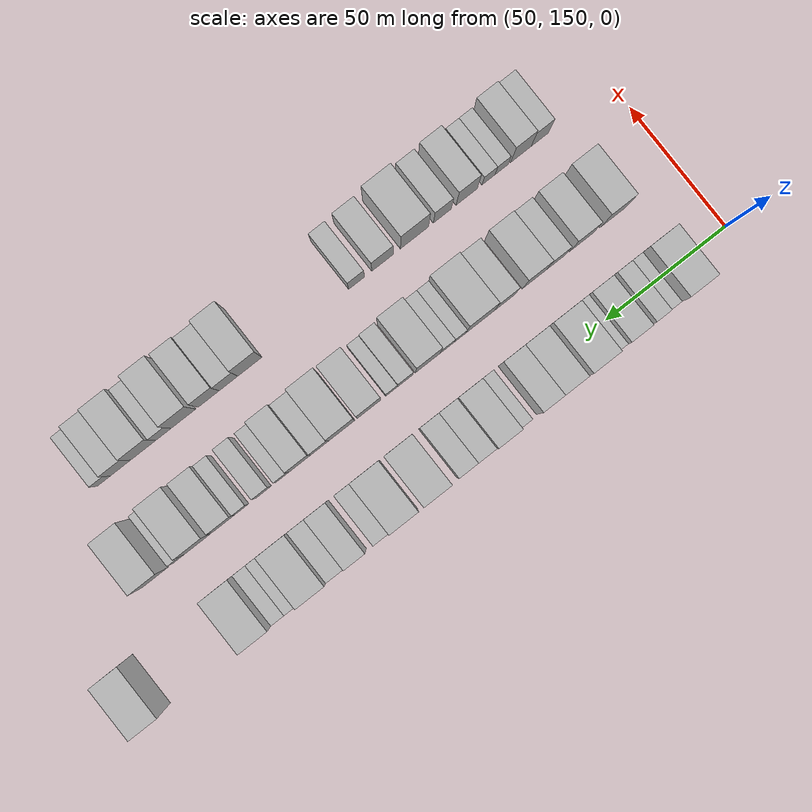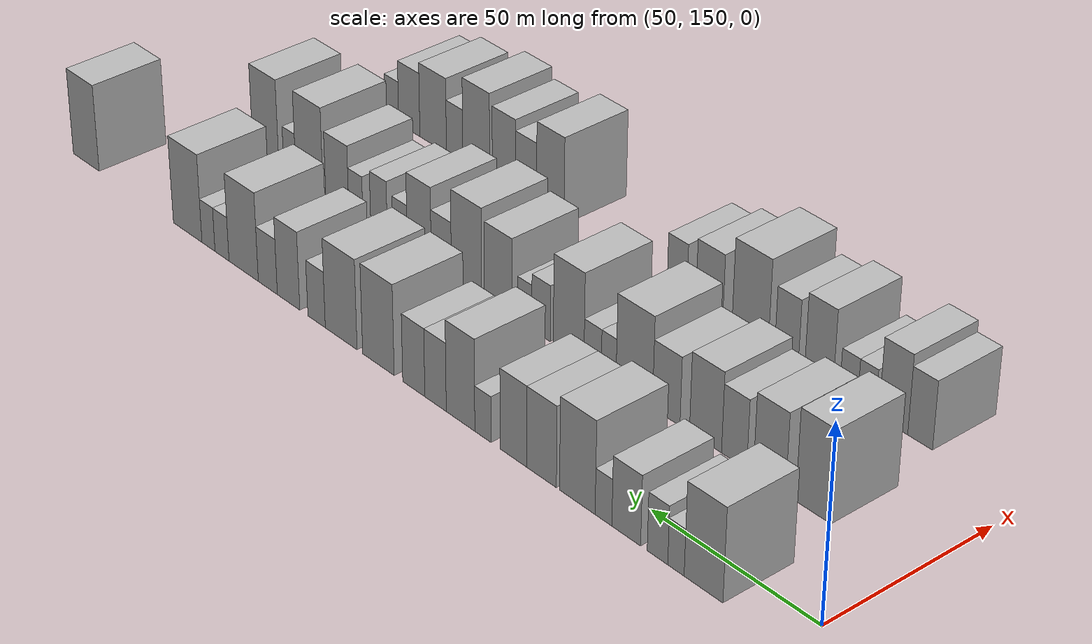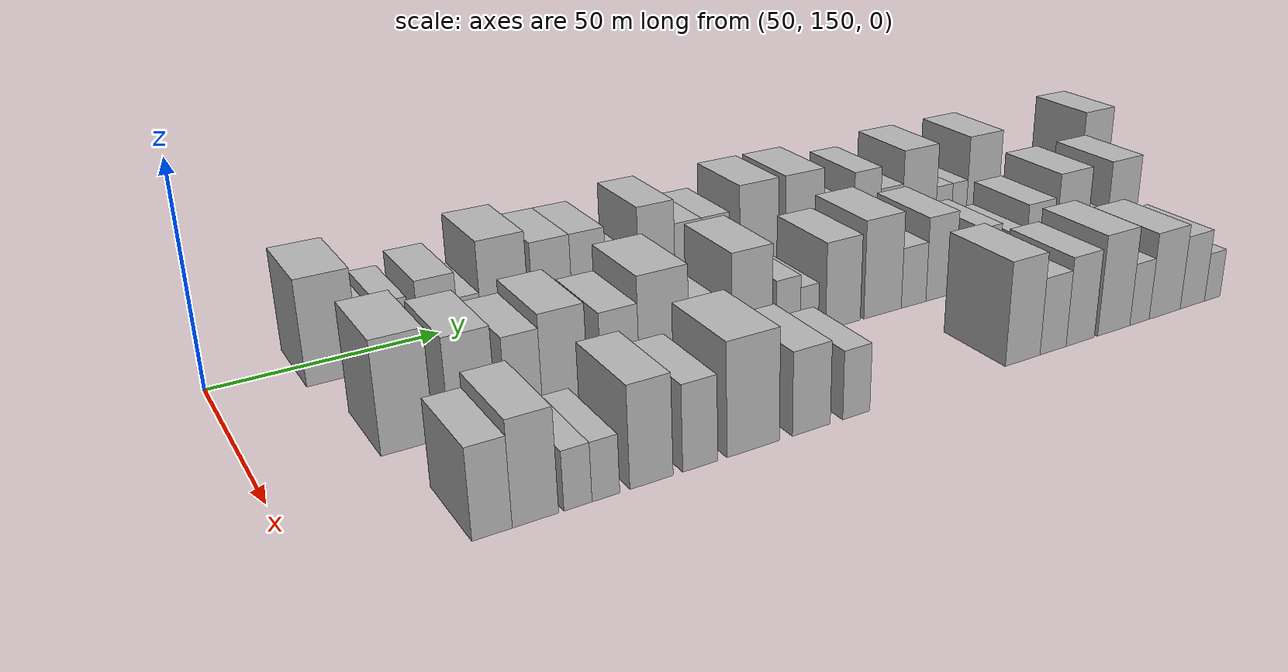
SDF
<sdf version="1.6">
 <world name="default">
  <model name="building_62">
   <static>1</static>
   <pose>50.0000 173.7144 0 0.000000 0.000000 0.000000</pose>
   <link name="link">
    <pose>0 0 12.00 0 0 0</pose>
    <collision name="collision"><geometry><box><size>20.0000 11.3572 24.0000</size></box></geometry></collision>
    <visual name="visual">
     <cast_shadows>0</cast_shadows>
     <geometry><box><size>20.0000 11.3572 24.0000</size></box></geometry>
     <material>
      <script>
       <uri>model://HANNAS_wall/materials/scripts</uri>
       <uri>model://HANNAS_wall/materials/textures</uri>
       <name>vrc/HANNAS_wall</name>
      </script>
     </material>
    </visual>
   </link>
  </model>
  <model name="building_63">
   <static>1</static>
   <pose>50.0000 181.8244 0 0.000000 0.000000 0.000000</pose>
   <link name="link">
    <pose>0 0 6.00 0 0 0</pose>
    <collision name="collision"><geometry><box><size>20.0000 4.8630 12.0000</size></box></geometry></collision>
    <visual name="visual">
     <cast_shadows>0</cast_shadows>
     <geometry><box><size>20.0000 4.8630 12.0000</size></box></geometry>
     <material>
      <script>
       <uri>model://HANNAS_wall/materials/scripts</uri>
       <uri>model://HANNAS_wall/materials/textures</uri>
       <name>vrc/HANNAS_wall</name>
      </script>
     </material>
    </visual>
   </link>
  </model>
  <model name="building_64">
   <static>1</static>
   <pose>50.0000 187.3455 0 0.000000 0.000000 0.000000</pose>
   <link name="link">
    <pose>0 0 7.50 0 0 0</pose>
    <collision name="collision"><geometry><box><size>20.0000 6.1792 15.0000</size></box></geometry></collision>
    <visual name="visual">
     <cast_shadows>0</cast_shadows>
     <geometry><box><size>20.0000 6.1792 15.0000</size></box></geometry>
     <material>
      <script>
       <uri>model://HANNAS_wall/materials/scripts</uri>
       <uri>model://HANNAS_wall/materials/textures</uri>
       <name>vrc/HANNAS_wall</name>
      </script>
     </material>
    </visual>
   </link>
  </model>
  <model name="building_65">
   <static>1</static>
   <pose>50.0000 196.8385 0 0.000000 0.000000 0.000000</pose>
   <link name="link">
    <pose>0 0 9.00 0 0 0</pose>
    <collision name="collision"><geometry><box><size>20.0000 8.8069 18.0000</size></box></geometry></collision>
    <visual name="visual">
     <cast_shadows>0</cast_shadows>
     <geometry><box><size>20.0000 8.8069 18.0000</size></box></geometry>
     <material>
      <script>
       <uri>model://HANNAS_wall/materials/scripts</uri>
       <uri>model://HANNAS_wall/materials/textures</uri>
       <name>vrc/HANNAS_wall</name>
      </script>
     </material>
    </visual>
   </link>
  </model>
  <model name="building_66">
   <static>1</static>
   <pose>50.0000 203.8385 0 0.000000 0.000000 0.000000</pose>
   <link name="link">
    <pose>0 0 6.00 0 0 0</pose>
    <collision name="collision"><geometry><box><size>20.0000 5.1930 12.0000</size></box></geometry></collision>
    <visual name="visual">
     <cast_shadows>0</cast_shadows>
     <geometry><box><size>20.0000 5.1930 12.0000</size></box></geometry>
     <material>
      <script>
       <uri>model://HANNAS_wall/materials/scripts</uri>
       <uri>model://HANNAS_wall/materials/textures</uri>
       <name>vrc/HANNAS_wall</name>
      </script>
     </material>
    </visual>
   </link>
  </model>
  <model name="building_67">
   <static>1</static>
   <pose>50.0000 212.0449 0 0.000000 0.000000 0.000000</pose>
   <link name="link">
    <pose>0 0 12.00 0 0 0</pose>
    <collision name="collision"><geometry><box><size>20.0000 11.2198 24.0000</size></box></geometry></collision>
    <visual name="visual">
     <cast_shadows>0</cast_shadows>
     <geometry><box><size>20.0000 11.2198 24.0000</size></box></geometry>
     <material>
      <script>
       <uri>model://HANNAS_wall/materials/scripts</uri>
       <uri>model://HANNAS_wall/materials/textures</uri>
       <name>vrc/HANNAS_wall</name>
      </script>
     </material>
    </visual>
   </link>
  </model>
  <model name="building_68">
   <static>1</static>
   <pose>50.0000 223.4553 0 0.000000 0.000000 0.000000</pose>
   <link name="link">
    <pose>0 0 10.50 0 0 0</pose>
    <collision name="collision"><geometry><box><size>20.0000 9.6011 21.0000</size></box></geometry></collision>
    <visual name="visual">
     <cast_shadows>0</cast_shadows>
     <geometry><box><size>20.0000 9.6011 21.0000</size></box></geometry>
     <material>
      <script>
       <uri>model://HANNAS_wall/materials/scripts</uri>
       <uri>model://HANNAS_wall/materials/textures</uri>
       <name>vrc/HANNAS_wall</name>
      </script>
     </material>
    </visual>
   </link>
  </model>
  <model name="building_69">
   <static>1</static>
   <pose>50.0000 232.6040 0 0.000000 0.000000 0.000000</pose>
   <link name="link">
    <pose>0 0 10.50 0 0 0</pose>
    <collision name="collision"><geometry><box><size>20.0000 8.6961 21.0000</size></box></geometry></collision>
    <visual name="visual">
     <cast_shadows>0</cast_shadows>
     <geometry><box><size>20.0000 8.6961 21.0000</size></box></geometry>
     <material>
      <script>
       <uri>model://HANNAS_wall/materials/scripts</uri>
       <uri>model://HANNAS_wall/materials/textures</uri>
       <name>vrc/HANNAS_wall</name>
      </script>
     </material>
    </visual>
   </link>
  </model>
  <model name="building_70">
   <static>1</static>
   <pose>50.0000 242.6426 0 0.000000 0.000000 0.000000</pose>
   <link name="link">
    <pose>0 0 6.00 0 0 0</pose>
    <collision name="collision"><geometry><box><size>20.0000 5.3812 12.0000</size></box></geometry></collision>
    <visual name="visual">
     <cast_shadows>0</cast_shadows>
     <geometry><box><size>20.0000 5.3812 12.0000</size></box></geometry>
     <material>
      <script>
       <uri>model://HANNAS_wall/materials/scripts</uri>
       <uri>model://HANNAS_wall/materials/textures</uri>
       <name>vrc/HANNAS_wall</name>
      </script>
     </material>
    </visual>
   </link>
  </model>
  <model name="building_71">
   <static>1</static>
   <pose>50.0000 250.1637 0 0.000000 0.000000 0.000000</pose>
   <link name="link">
    <pose>0 0 12.00 0 0 0</pose>
    <collision name="collision"><geometry><box><size>20.0000 9.6609 24.0000</size></box></geometry></collision>
    <visual name="visual">
     <cast_shadows>0</cast_shadows>
     <geometry><box><size>20.0000 9.6609 24.0000</size></box></geometry>
     <material>
      <script>
       <uri>model://HANNAS_wall/materials/scripts</uri>
       <uri>model://HANNAS_wall/materials/textures</uri>
       <name>vrc/HANNAS_wall</name>
      </script>
     </material>
    </visual>
   </link>
  </model>
  <model name="building_72">
   <static>1</static>
   <pose>50.0000 258.6765 0 0.000000 0.000000 0.000000</pose>
   <link name="link">
    <pose>0 0 9.00 0 0 0</pose>
    <collision name="collision"><geometry><box><size>20.0000 7.3645 18.0000</size></box></geometry></collision>
    <visual name="visual">
     <cast_shadows>0</cast_shadows>
     <geometry><box><size>20.0000 7.3645 18.0000</size></box></geometry>
     <material>
      <script>
       <uri>model://HANNAS_wall/materials/scripts</uri>
       <uri>model://HANNAS_wall/materials/textures</uri>
       <name>vrc/HANNAS_wall</name>
      </script>
     </material>
    </visual>
   </link>
  </model>
  <model name="building_73">
   <static>1</static>
   <pose>50.0000 266.2126 0 0.000000 0.000000 0.000000</pose>
   <link name="link">
    <pose>0 0 9.00 0 0 0</pose>
    <collision name="collision"><geometry><box><size>20.0000 7.7078 18.0000</size></box></geometry></collision>
    <visual name="visual">
     <cast_shadows>0</cast_shadows>
     <geometry><box><size>20.0000 7.7078 18.0000</size></box></geometry>
     <material>
      <script>
       <uri>model://HANNAS_wall/materials/scripts</uri>
       <uri>model://HANNAS_wall/materials/textures</uri>
       <name>vrc/HANNAS_wall</name>
      </script>
     </material>
    </visual>
   </link>
  </model>
  <model name="building_74">
   <static>1</static>
   <pose>50.0000 278.6927 0 0.000000 0.000000 0.000000</pose>
   <link name="link">
    <pose>0 0 12.00 0 0 0</pose>
    <collision name="collision"><geometry><box><size>20.0000 11.2523 24.0000</size></box></geometry></collision>
    <visual name="visual">
     <cast_shadows>0</cast_shadows>
     <geometry><box><size>20.0000 11.2523 24.0000</size></box></geometry>
     <material>
      <script>
       <uri>model://HANNAS_wall/materials/scripts</uri>
       <uri>model://HANNAS_wall/materials/textures</uri>
       <name>vrc/HANNAS_wall</name>
      </script>
     </material>
    </visual>
   </link>
  </model>
  <model name="building_75">
   <static>1</static>
   <pose>50.0000 292.1202 0 0.000000 0.000000 0.000000</pose>
   <link name="link">
    <pose>0 0 12.00 0 0 0</pose>
    <collision name="collision"><geometry><box><size>20.0000 11.6029 24.0000</size></box></geometry></collision>
    <visual name="visual">
     <cast_shadows>0</cast_shadows>
     <geometry><box><size>20.0000 11.6029 24.0000</size></box></geometry>
     <material>
      <script>
       <uri>model://HANNAS_wall/materials/scripts</uri>
       <uri>model://HANNAS_wall/materials/textures</uri>
       <name>vrc/HANNAS_wall</name>
      </script>
     </material>
    </visual>
   </link>
  </model>
  <model name="building_76">
   <static>1</static>
   <pose>50.0000 301.1578 0 0.000000 0.000000 0.000000</pose>
   <link name="link">
    <pose>0 0 7.50 0 0 0</pose>
    <collision name="collision"><geometry><box><size>20.0000 6.4723 15.0000</size></box></geometry></collision>
    <visual name="visual">
     <cast_shadows>0</cast_shadows>
     <geometry><box><size>20.0000 6.4723 15.0000</size></box></geometry>
     <material>
      <script>
       <uri>model://HANNAS_wall/materials/scripts</uri>
       <uri>model://HANNAS_wall/materials/textures</uri>
       <name>vrc/HANNAS_wall</name>
      </script>
     </material>
    </visual>
   </link>
  </model>
  <model name="building_77">
   <static>1</static>
   <pose>50.0000 311.6452 0 0.000000 0.000000 0.000000</pose>
   <link name="link">
    <pose>0 0 10.50 0 0 0</pose>
    <collision name="collision"><geometry><box><size>20.0000 8.5024 21.0000</size></box></geometry></collision>
    <visual name="visual">
     <cast_shadows>0</cast_shadows>
     <geometry><box><size>20.0000 8.5024 21.0000</size></box></geometry>
     <material>
      <script>
       <uri>model://HANNAS_wall/materials/scripts</uri>
       <uri>model://HANNAS_wall/materials/textures</uri>
       <name>vrc/HANNAS_wall</name>
      </script>
     </material>
    </visual>
   </link>
  </model>
  <model name="building_78">
   <static>1</static>
   <pose>50.0000 319.5354 0 0.000000 0.000000 0.000000</pose>
   <link name="link">
    <pose>0 0 7.50 0 0 0</pose>
    <collision name="collision"><geometry><box><size>20.0000 7.2782 15.0000</size></box></geometry></collision>
    <visual name="visual">
     <cast_shadows>0</cast_shadows>
     <geometry><box><size>20.0000 7.2782 15.0000</size></box></geometry>
     <material>
      <script>
       <uri>model://HANNAS_wall/materials/scripts</uri>
       <uri>model://HANNAS_wall/materials/textures</uri>
       <name>vrc/HANNAS_wall</name>
      </script>
     </material>
    </visual>
   </link>
  </model>
  <model name="building_79">
   <static>1</static>
   <pose>50.0000 328.8810 0 0.000000 0.000000 0.000000</pose>
   <link name="link">
    <pose>0 0 12.00 0 0 0</pose>
    <collision name="collision"><geometry><box><size>20.0000 11.4130 24.0000</size></box></geometry></collision>
    <visual name="visual">
     <cast_shadows>0</cast_shadows>
     <geometry><box><size>20.0000 11.4130 24.0000</size></box></geometry>
     <material>
      <script>
       <uri>model://HANNAS_wall/materials/scripts</uri>
       <uri>model://HANNAS_wall/materials/textures</uri>
       <name>vrc/HANNAS_wall</name>
      </script>
     </material>
    </visual>
   </link>
  </model>
  <model name="building_80">
   <static>1</static>
   <pose>50.0000 337.3499 0 0.000000 0.000000 0.000000</pose>
   <link name="link">
    <pose>0 0 6.00 0 0 0</pose>
    <collision name="collision"><geometry><box><size>20.0000 5.5250 12.0000</size></box></geometry></collision>
    <visual name="visual">
     <cast_shadows>0</cast_shadows>
     <geometry><box><size>20.0000 5.5250 12.0000</size></box></geometry>
     <material>
      <script>
       <uri>model://HANNAS_wall/materials/scripts</uri>
       <uri>model://HANNAS_wall/materials/textures</uri>
       <name>vrc/HANNAS_wall</name>
      </script>
     </material>
    </visual>
   </link>
  </model>
  <model name="building_81">
   <static>1</static>
   <pose>50.0000 342.7146 0 0.000000 0.000000 0.000000</pose>
   <link name="link">
    <pose>0 0 6.00 0 0 0</pose>
    <collision name="collision"><geometry><box><size>20.0000 5.2045 12.0000</size></box></geometry></collision>
    <visual name="visual">
     <cast_shadows>0</cast_shadows>
     <geometry><box><size>20.0000 5.2045 12.0000</size></box></geometry>
     <material>
      <script>
       <uri>model://HANNAS_wall/materials/scripts</uri>
       <uri>model://HANNAS_wall/materials/textures</uri>
       <name>vrc/HANNAS_wall</name>
      </script>
     </material>
    </visual>
   </link>
  </model>
  <model name="building_82">
   <static>1</static>
   <pose>50.0000 351.0727 0 0.000000 0.000000 0.000000</pose>
   <link name="link">
    <pose>0 0 12.00 0 0 0</pose>
    <collision name="collision"><geometry><box><size>20.0000 11.5117 24.0000</size></box></geometry></collision>
    <visual name="visual">
     <cast_shadows>0</cast_shadows>
     <geometry><box><size>20.0000 11.5117 24.0000</size></box></geometry>
     <material>
      <script>
       <uri>model://HANNAS_wall/materials/scripts</uri>
       <uri>model://HANNAS_wall/materials/textures</uri>
       <name>vrc/HANNAS_wall</name>
      </script>
     </material>
    </visual>
   </link>
  </model>
  <model name="building_83">
   <static>1</static>
   <pose>50.0000 393.5186 0 0.000000 0.000000 0.000000</pose>
   <link name="link">
    <pose>0 0 12.00 0 0 0</pose>
    <collision name="collision"><geometry><box><size>20.0000 11.1267 24.0000</size></box></geometry></collision>
    <visual name="visual">
     <cast_shadows>0</cast_shadows>
     <geometry><box><size>20.0000 11.1267 24.0000</size></box></geometry>
     <material>
      <script>
       <uri>model://HANNAS_wall/materials/scripts</uri>
       <uri>model://HANNAS_wall/materials/textures</uri>
       <name>vrc/HANNAS_wall</name>
      </script>
     </material>
    </visual>
   </link>
  </model>
  <model name="building_145">
   <static>1</static>
   <pose>85.0000 177.4170 0 0.000000 0.000000 0.000000</pose>
   <link name="link">
    <pose>0 0 12.00 0 0 0</pose>
    <collision name="collision"><geometry><box><size>20.0000 10.3806 24.0000</size></box></geometry></collision>
    <visual name="visual">
     <cast_shadows>0</cast_shadows>
     <geometry><box><size>20.0000 10.3806 24.0000</size></box></geometry>
     <material>
      <script>
       <uri>model://HANNAS_wall/materials/scripts</uri>
       <uri>model://HANNAS_wall/materials/textures</uri>
       <name>vrc/HANNAS_wall</name>
      </script>
     </material>
    </visual>
   </link>
  </model>
  <model name="building_146">
   <static>1</static>
   <pose>85.0000 190.4467 0 0.000000 0.000000 0.000000</pose>
   <link name="link">
    <pose>0 0 10.50 0 0 0</pose>
    <collision name="collision"><geometry><box><size>20.0000 9.6788 21.0000</size></box></geometry></collision>
    <visual name="visual">
     <cast_shadows>0</cast_shadows>
     <geometry><box><size>20.0000 9.6788 21.0000</size></box></geometry>
     <material>
      <script>
       <uri>model://HANNAS_wall/materials/scripts</uri>
       <uri>model://HANNAS_wall/materials/textures</uri>
       <name>vrc/HANNAS_wall</name>
      </script>
     </material>
    </visual>
   </link>
  </model>
  <model name="building_147">
   <static>1</static>
   <pose>85.0000 201.1590 0 0.000000 0.000000 0.000000</pose>
   <link name="link">
    <pose>0 0 9.00 0 0 0</pose>
    <collision name="collision"><geometry><box><size>20.0000 7.7457 18.0000</size></box></geometry></collision>
    <visual name="visual">
     <cast_shadows>0</cast_shadows>
     <geometry><box><size>20.0000 7.7457 18.0000</size></box></geometry>
     <material>
      <script>
       <uri>model://HANNAS_wall/materials/scripts</uri>
       <uri>model://HANNAS_wall/materials/textures</uri>
       <name>vrc/HANNAS_wall</name>
      </script>
     </material>
    </visual>
   </link>
  </model>
  <model name="building_148">
   <static>1</static>
   <pose>85.0000 210.0205 0 0.000000 0.000000 0.000000</pose>
   <link name="link">
    <pose>0 0 10.50 0 0 0</pose>
    <collision name="collision"><geometry><box><size>20.0000 9.9774 21.0000</size></box></geometry></collision>
    <visual name="visual">
     <cast_shadows>0</cast_shadows>
     <geometry><box><size>20.0000 9.9774 21.0000</size></box></geometry>
     <material>
      <script>
       <uri>model://HANNAS_wall/materials/scripts</uri>
       <uri>model://HANNAS_wall/materials/textures</uri>
       <name>vrc/HANNAS_wall</name>
      </script>
     </material>
    </visual>
   </link>
  </model>
  <model name="building_149">
   <static>1</static>
   <pose>85.0000 222.3865 0 0.000000 0.000000 0.000000</pose>
   <link name="link">
    <pose>0 0 9.00 0 0 0</pose>
    <collision name="collision"><geometry><box><size>20.0000 8.7546 18.0000</size></box></geometry></collision>
    <visual name="visual">
     <cast_shadows>0</cast_shadows>
     <geometry><box><size>20.0000 8.7546 18.0000</size></box></geometry>
     <material>
      <script>
       <uri>model://HANNAS_wall/materials/scripts</uri>
       <uri>model://HANNAS_wall/materials/textures</uri>
       <name>vrc/HANNAS_wall</name>
      </script>
     </material>
    </visual>
   </link>
  </model>
  <model name="building_150">
   <static>1</static>
   <pose>85.0000 232.6985 0 0.000000 0.000000 0.000000</pose>
   <link name="link">
    <pose>0 0 12.00 0 0 0</pose>
    <collision name="collision"><geometry><box><size>20.0000 11.8694 24.0000</size></box></geometry></collision>
    <visual name="visual">
     <cast_shadows>0</cast_shadows>
     <geometry><box><size>20.0000 11.8694 24.0000</size></box></geometry>
     <material>
      <script>
       <uri>model://HANNAS_wall/materials/scripts</uri>
       <uri>model://HANNAS_wall/materials/textures</uri>
       <name>vrc/HANNAS_wall</name>
      </script>
     </material>
    </visual>
   </link>
  </model>
  <model name="building_151">
   <static>1</static>
   <pose>85.0000 241.0688 0 0.000000 0.000000 0.000000</pose>
   <link name="link">
    <pose>0 0 6.00 0 0 0</pose>
    <collision name="collision"><geometry><box><size>20.0000 4.8711 12.0000</size></box></geometry></collision>
    <visual name="visual">
     <cast_shadows>0</cast_shadows>
     <geometry><box><size>20.0000 4.8711 12.0000</size></box></geometry>
     <material>
      <script>
       <uri>model://HANNAS_wall/materials/scripts</uri>
       <uri>model://HANNAS_wall/materials/textures</uri>
       <name>vrc/HANNAS_wall</name>
      </script>
     </material>
    </visual>
   </link>
  </model>
  <model name="building_152">
   <static>1</static>
   <pose>85.0000 246.3772 0 0.000000 0.000000 0.000000</pose>
   <link name="link">
    <pose>0 0 6.00 0 0 0</pose>
    <collision name="collision"><geometry><box><size>20.0000 5.7457 12.0000</size></box></geometry></collision>
    <visual name="visual">
     <cast_shadows>0</cast_shadows>
     <geometry><box><size>20.0000 5.7457 12.0000</size></box></geometry>
     <material>
      <script>
       <uri>model://HANNAS_wall/materials/scripts</uri>
       <uri>model://HANNAS_wall/materials/textures</uri>
       <name>vrc/HANNAS_wall</name>
      </script>
     </material>
    </visual>
   </link>
  </model>
  <model name="building_153">
   <static>1</static>
   <pose>85.0000 254.4271 0 0.000000 0.000000 0.000000</pose>
   <link name="link">
    <pose>0 0 12.00 0 0 0</pose>
    <collision name="collision"><geometry><box><size>20.0000 10.3541 24.0000</size></box></geometry></collision>
    <visual name="visual">
     <cast_shadows>0</cast_shadows>
     <geometry><box><size>20.0000 10.3541 24.0000</size></box></geometry>
     <material>
      <script>
       <uri>model://HANNAS_wall/materials/scripts</uri>
       <uri>model://HANNAS_wall/materials/textures</uri>
       <name>vrc/HANNAS_wall</name>
      </script>
     </material>
    </visual>
   </link>
  </model>
  <model name="building_154">
   <static>1</static>
   <pose>85.0000 263.7893 0 0.000000 0.000000 0.000000</pose>
   <link name="link">
    <pose>0 0 7.50 0 0 0</pose>
    <collision name="collision"><geometry><box><size>20.0000 6.3703 15.0000</size></box></geometry></collision>
    <visual name="visual">
     <cast_shadows>0</cast_shadows>
     <geometry><box><size>20.0000 6.3703 15.0000</size></box></geometry>
     <material>
      <script>
       <uri>model://HANNAS_wall/materials/scripts</uri>
       <uri>model://HANNAS_wall/materials/textures</uri>
       <name>vrc/HANNAS_wall</name>
      </script>
     </material>
    </visual>
   </link>
  </model>
  <model name="building_155">
   <static>1</static>
   <pose>85.0000 269.4238 0 0.000000 0.000000 0.000000</pose>
   <link name="link">
    <pose>0 0 6.00 0 0 0</pose>
    <collision name="collision"><geometry><box><size>20.0000 4.8988 12.0000</size></box></geometry></collision>
    <visual name="visual">
     <cast_shadows>0</cast_shadows>
     <geometry><box><size>20.0000 4.8988 12.0000</size></box></geometry>
     <material>
      <script>
       <uri>model://HANNAS_wall/materials/scripts</uri>
       <uri>model://HANNAS_wall/materials/textures</uri>
       <name>vrc/HANNAS_wall</name>
      </script>
     </material>
    </visual>
   </link>
  </model>
  <model name="building_156">
   <static>1</static>
   <pose>85.0000 278.7186 0 0.000000 0.000000 0.000000</pose>
   <link name="link">
    <pose>0 0 10.50 0 0 0</pose>
    <collision name="collision"><geometry><box><size>20.0000 9.6908 21.0000</size></box></geometry></collision>
    <visual name="visual">
     <cast_shadows>0</cast_shadows>
     <geometry><box><size>20.0000 9.6908 21.0000</size></box></geometry>
     <material>
      <script>
       <uri>model://HANNAS_wall/materials/scripts</uri>
       <uri>model://HANNAS_wall/materials/textures</uri>
       <name>vrc/HANNAS_wall</name>
      </script>
     </material>
    </visual>
   </link>
  </model>
  <model name="building_157">
   <static>1</static>
   <pose>85.0000 289.9933 0 0.000000 0.000000 0.000000</pose>
   <link name="link">
    <pose>0 0 12.00 0 0 0</pose>
    <collision name="collision"><geometry><box><size>20.0000 10.8585 24.0000</size></box></geometry></collision>
    <visual name="visual">
     <cast_shadows>0</cast_shadows>
     <geometry><box><size>20.0000 10.8585 24.0000</size></box></geometry>
     <material>
      <script>
       <uri>model://HANNAS_wall/materials/scripts</uri>
       <uri>model://HANNAS_wall/materials/textures</uri>
       <name>vrc/HANNAS_wall</name>
      </script>
     </material>
    </visual>
   </link>
  </model>
  <model name="building_158">
   <static>1</static>
   <pose>85.0000 299.0933 0 0.000000 0.000000 0.000000</pose>
   <link name="link">
    <pose>0 0 7.50 0 0 0</pose>
    <collision name="collision"><geometry><box><size>20.0000 7.3415 15.0000</size></box></geometry></collision>
    <visual name="visual">
     <cast_shadows>0</cast_shadows>
     <geometry><box><size>20.0000 7.3415 15.0000</size></box></geometry>
     <material>
      <script>
       <uri>model://HANNAS_wall/materials/scripts</uri>
       <uri>model://HANNAS_wall/materials/textures</uri>
       <name>vrc/HANNAS_wall</name>
      </script>
     </material>
    </visual>
   </link>
  </model>
  <model name="building_159">
   <static>1</static>
   <pose>85.0000 307.2067 0 0.000000 0.000000 0.000000</pose>
   <link name="link">
    <pose>0 0 10.50 0 0 0</pose>
    <collision name="collision"><geometry><box><size>20.0000 8.8854 21.0000</size></box></geometry></collision>
    <visual name="visual">
     <cast_shadows>0</cast_shadows>
     <geometry><box><size>20.0000 8.8854 21.0000</size></box></geometry>
     <material>
      <script>
       <uri>model://HANNAS_wall/materials/scripts</uri>
       <uri>model://HANNAS_wall/materials/textures</uri>
       <name>vrc/HANNAS_wall</name>
      </script>
     </material>
    </visual>
   </link>
  </model>
  <model name="building_160">
   <static>1</static>
   <pose>85.0000 314.3949 0 0.000000 0.000000 0.000000</pose>
   <link name="link">
    <pose>0 0 6.00 0 0 0</pose>
    <collision name="collision"><geometry><box><size>20.0000 5.4910 12.0000</size></box></geometry></collision>
    <visual name="visual">
     <cast_shadows>0</cast_shadows>
     <geometry><box><size>20.0000 5.4910 12.0000</size></box></geometry>
     <material>
      <script>
       <uri>model://HANNAS_wall/materials/scripts</uri>
       <uri>model://HANNAS_wall/materials/textures</uri>
       <name>vrc/HANNAS_wall</name>
      </script>
     </material>
    </visual>
   </link>
  </model>
  <model name="building_161">
   <static>1</static>
   <pose>85.0000 322.2951 0 0.000000 0.000000 0.000000</pose>
   <link name="link">
    <pose>0 0 7.50 0 0 0</pose>
    <collision name="collision"><geometry><box><size>20.0000 6.3095 15.0000</size></box></geometry></collision>
    <visual name="visual">
     <cast_shadows>0</cast_shadows>
     <geometry><box><size>20.0000 6.3095 15.0000</size></box></geometry>
     <material>
      <script>
       <uri>model://HANNAS_wall/materials/scripts</uri>
       <uri>model://HANNAS_wall/materials/textures</uri>
       <name>vrc/HANNAS_wall</name>
      </script>
     </material>
    </visual>
   </link>
  </model>
  <model name="building_162">
   <static>1</static>
   <pose>85.0000 331.1705 0 0.000000 0.000000 0.000000</pose>
   <link name="link">
    <pose>0 0 6.00 0 0 0</pose>
    <collision name="collision"><geometry><box><size>20.0000 5.4412 12.0000</size></box></geometry></collision>
    <visual name="visual">
     <cast_shadows>0</cast_shadows>
     <geometry><box><size>20.0000 5.4412 12.0000</size></box></geometry>
     <material>
      <script>
       <uri>model://HANNAS_wall/materials/scripts</uri>
       <uri>model://HANNAS_wall/materials/textures</uri>
       <name>vrc/HANNAS_wall</name>
      </script>
     </material>
    </visual>
   </link>
  </model>
  <model name="building_163">
   <static>1</static>
   <pose>85.0000 338.3834 0 0.000000 0.000000 0.000000</pose>
   <link name="link">
    <pose>0 0 9.00 0 0 0</pose>
    <collision name="collision"><geometry><box><size>20.0000 8.9846 18.0000</size></box></geometry></collision>
    <visual name="visual">
     <cast_shadows>0</cast_shadows>
     <geometry><box><size>20.0000 8.9846 18.0000</size></box></geometry>
     <material>
      <script>
       <uri>model://HANNAS_wall/materials/scripts</uri>
       <uri>model://HANNAS_wall/materials/textures</uri>
       <name>vrc/HANNAS_wall</name>
      </script>
     </material>
    </visual>
   </link>
  </model>
  <model name="building_164">
   <static>1</static>
   <pose>85.0000 349.3022 0 0.000000 0.000000 0.000000</pose>
   <link name="link">
    <pose>0 0 12.00 0 0 0</pose>
    <collision name="collision"><geometry><box><size>20.0000 10.8530 24.0000</size></box></geometry></collision>
    <visual name="visual">
     <cast_shadows>0</cast_shadows>
     <geometry><box><size>20.0000 10.8530 24.0000</size></box></geometry>
     <material>
      <script>
       <uri>model://HANNAS_wall/materials/scripts</uri>
       <uri>model://HANNAS_wall/materials/textures</uri>
       <name>vrc/HANNAS_wall</name>
      </script>
     </material>
    </visual>
   </link>
  </model>
  <model name="building_165">
   <static>1</static>
   <pose>85.0000 357.1600 0 0.000000 0.000000 0.000000</pose>
   <link name="link">
    <pose>0 0 6.00 0 0 0</pose>
    <collision name="collision"><geometry><box><size>20.0000 4.8626 12.0000</size></box></geometry></collision>
    <visual name="visual">
     <cast_shadows>0</cast_shadows>
     <geometry><box><size>20.0000 4.8626 12.0000</size></box></geometry>
     <material>
      <script>
       <uri>model://HANNAS_wall/materials/scripts</uri>
       <uri>model://HANNAS_wall/materials/textures</uri>
       <name>vrc/HANNAS_wall</name>
      </script>
     </material>
    </visual>
   </link>
  </model>
  <model name="building_166">
   <static>1</static>
   <pose>85.0000 366.8951 0 0.000000 0.000000 0.000000</pose>
   <link name="link">
    <pose>0 0 12.00 0 0 0</pose>
    <collision name="collision"><geometry><box><size>20.0000 10.6077 24.0000</size></box></geometry></collision>
    <visual name="visual">
     <cast_shadows>0</cast_shadows>
     <geometry><box><size>20.0000 10.6077 24.0000</size></box></geometry>
     <material>
      <script>
       <uri>model://HANNAS_wall/materials/scripts</uri>
       <uri>model://HANNAS_wall/materials/textures</uri>
       <name>vrc/HANNAS_wall</name>
      </script>
     </material>
    </visual>
   </link>
  </model>
  <model name="building_227">
   <static>1</static>
   <pose>120.0000 180.0148 0 0.000000 0.000000 0.000000</pose>
   <link name="link">
    <pose>0 0 9.00 0 0 0</pose>
    <collision name="collision"><geometry><box><size>20.0000 7.2832 18.0000</size></box></geometry></collision>
    <visual name="visual">
     <cast_shadows>0</cast_shadows>
     <geometry><box><size>20.0000 7.2832 18.0000</size></box></geometry>
     <material>
      <script>
       <uri>model://HANNAS_wall/materials/scripts</uri>
       <uri>model://HANNAS_wall/materials/textures</uri>
       <name>vrc/HANNAS_wall</name>
      </script>
     </material>
    </visual>
   </link>
  </model>
  <model name="building_228">
   <static>1</static>
   <pose>120.0000 187.9641 0 0.000000 0.000000 0.000000</pose>
   <link name="link">
    <pose>0 0 10.50 0 0 0</pose>
    <collision name="collision"><geometry><box><size>20.0000 8.6156 21.0000</size></box></geometry></collision>
    <visual name="visual">
     <cast_shadows>0</cast_shadows>
     <geometry><box><size>20.0000 8.6156 21.0000</size></box></geometry>
     <material>
      <script>
       <uri>model://HANNAS_wall/materials/scripts</uri>
       <uri>model://HANNAS_wall/materials/textures</uri>
       <name>vrc/HANNAS_wall</name>
      </script>
     </material>
    </visual>
   </link>
  </model>
  <model name="building_229">
   <static>1</static>
   <pose>120.0000 195.9854 0 0.000000 0.000000 0.000000</pose>
   <link name="link">
    <pose>0 0 6.00 0 0 0</pose>
    <collision name="collision"><geometry><box><size>20.0000 5.4270 12.0000</size></box></geometry></collision>
    <visual name="visual">
     <cast_shadows>0</cast_shadows>
     <geometry><box><size>20.0000 5.4270 12.0000</size></box></geometry>
     <material>
      <script>
       <uri>model://HANNAS_wall/materials/scripts</uri>
       <uri>model://HANNAS_wall/materials/textures</uri>
       <name>vrc/HANNAS_wall</name>
      </script>
     </material>
    </visual>
   </link>
  </model>
  <model name="building_230">
   <static>1</static>
   <pose>120.0000 201.4303 0 0.000000 0.000000 0.000000</pose>
   <link name="link">
    <pose>0 0 6.00 0 0 0</pose>
    <collision name="collision"><geometry><box><size>20.0000 5.4628 12.0000</size></box></geometry></collision>
    <visual name="visual">
     <cast_shadows>0</cast_shadows>
     <geometry><box><size>20.0000 5.4628 12.0000</size></box></geometry>
     <material>
      <script>
       <uri>model://HANNAS_wall/materials/scripts</uri>
       <uri>model://HANNAS_wall/materials/textures</uri>
       <name>vrc/HANNAS_wall</name>
      </script>
     </material>
    </visual>
   </link>
  </model>
  <model name="building_231">
   <static>1</static>
   <pose>120.0000 210.5962 0 0.000000 0.000000 0.000000</pose>
   <link name="link">
    <pose>0 0 10.50 0 0 0</pose>
    <collision name="collision"><geometry><box><size>20.0000 8.8690 21.0000</size></box></geometry></collision>
    <visual name="visual">
     <cast_shadows>0</cast_shadows>
     <geometry><box><size>20.0000 8.8690 21.0000</size></box></geometry>
     <material>
      <script>
       <uri>model://HANNAS_wall/materials/scripts</uri>
       <uri>model://HANNAS_wall/materials/textures</uri>
       <name>vrc/HANNAS_wall</name>
      </script>
     </material>
    </visual>
   </link>
  </model>
  <model name="building_232">
   <static>1</static>
   <pose>120.0000 220.7696 0 0.000000 0.000000 0.000000</pose>
   <link name="link">
    <pose>0 0 9.00 0 0 0</pose>
    <collision name="collision"><geometry><box><size>20.0000 7.4778 18.0000</size></box></geometry></collision>
    <visual name="visual">
     <cast_shadows>0</cast_shadows>
     <geometry><box><size>20.0000 7.4778 18.0000</size></box></geometry>
     <material>
      <script>
       <uri>model://HANNAS_wall/materials/scripts</uri>
       <uri>model://HANNAS_wall/materials/textures</uri>
       <name>vrc/HANNAS_wall</name>
      </script>
     </material>
    </visual>
   </link>
  </model>
  <model name="building_233">
   <static>1</static>
   <pose>120.0000 232.3633 0 0.000000 0.000000 0.000000</pose>
   <link name="link">
    <pose>0 0 12.00 0 0 0</pose>
    <collision name="collision"><geometry><box><size>20.0000 11.7096 24.0000</size></box></geometry></collision>
    <visual name="visual">
     <cast_shadows>0</cast_shadows>
     <geometry><box><size>20.0000 11.7096 24.0000</size></box></geometry>
     <material>
      <script>
       <uri>model://HANNAS_wall/materials/scripts</uri>
       <uri>model://HANNAS_wall/materials/textures</uri>
       <name>vrc/HANNAS_wall</name>
      </script>
     </material>
    </visual>
   </link>
  </model>
  <model name="building_234">
   <static>1</static>
   <pose>120.0000 245.6688 0 0.000000 0.000000 0.000000</pose>
   <link name="link">
    <pose>0 0 9.00 0 0 0</pose>
    <collision name="collision"><geometry><box><size>20.0000 8.9013 18.0000</size></box></geometry></collision>
    <visual name="visual">
     <cast_shadows>0</cast_shadows>
     <geometry><box><size>20.0000 8.9013 18.0000</size></box></geometry>
     <material>
      <script>
       <uri>model://HANNAS_wall/materials/scripts</uri>
       <uri>model://HANNAS_wall/materials/textures</uri>
       <name>vrc/HANNAS_wall</name>
      </script>
     </material>
    </visual>
   </link>
  </model>
  <model name="building_235">
   <static>1</static>
   <pose>120.0000 256.4324 0 0.000000 0.000000 0.000000</pose>
   <link name="link">
    <pose>0 0 7.50 0 0 0</pose>
    <collision name="collision"><geometry><box><size>20.0000 6.6258 15.0000</size></box></geometry></collision>
    <visual name="visual">
     <cast_shadows>0</cast_shadows>
     <geometry><box><size>20.0000 6.6258 15.0000</size></box></geometry>
     <material>
      <script>
       <uri>model://HANNAS_wall/materials/scripts</uri>
       <uri>model://HANNAS_wall/materials/textures</uri>
       <name>vrc/HANNAS_wall</name>
      </script>
     </material>
    </visual>
   </link>
  </model>
  <model name="building_236">
   <static>1</static>
   <pose>120.0000 300.6840 0 0.000000 0.000000 0.000000</pose>
   <link name="link">
    <pose>0 0 12.00 0 0 0</pose>
    <collision name="collision"><geometry><box><size>20.0000 9.9592 24.0000</size></box></geometry></collision>
    <visual name="visual">
     <cast_shadows>0</cast_shadows>
     <geometry><box><size>20.0000 9.9592 24.0000</size></box></geometry>
     <material>
      <script>
       <uri>model://HANNAS_wall/materials/scripts</uri>
       <uri>model://HANNAS_wall/materials/textures</uri>
       <name>vrc/HANNAS_wall</name>
      </script>
     </material>
    </visual>
   </link>
  </model>
  <model name="building_237">
   <static>1</static>
   <pose>120.0000 309.5385 0 0.000000 0.000000 0.000000</pose>
   <link name="link">
    <pose>0 0 9.00 0 0 0</pose>
    <collision name="collision"><geometry><box><size>20.0000 7.7499 18.0000</size></box></geometry></collision>
    <visual name="visual">
     <cast_shadows>0</cast_shadows>
     <geometry><box><size>20.0000 7.7499 18.0000</size></box></geometry>
     <material>
      <script>
       <uri>model://HANNAS_wall/materials/scripts</uri>
       <uri>model://HANNAS_wall/materials/textures</uri>
       <name>vrc/HANNAS_wall</name>
      </script>
     </material>
    </visual>
   </link>
  </model>
  <model name="building_238">
   <static>1</static>
   <pose>120.0000 317.7332 0 0.000000 0.000000 0.000000</pose>
   <link name="link">
    <pose>0 0 10.50 0 0 0</pose>
    <collision name="collision"><geometry><box><size>20.0000 8.6395 21.0000</size></box></geometry></collision>
    <visual name="visual">
     <cast_shadows>0</cast_shadows>
     <geometry><box><size>20.0000 8.6395 21.0000</size></box></geometry>
     <material>
      <script>
       <uri>model://HANNAS_wall/materials/scripts</uri>
       <uri>model://HANNAS_wall/materials/textures</uri>
       <name>vrc/HANNAS_wall</name>
      </script>
     </material>
    </visual>
   </link>
  </model>
  <model name="building_239">
   <static>1</static>
   <pose>120.0000 328.1440 0 0.000000 0.000000 0.000000</pose>
   <link name="link">
    <pose>0 0 12.00 0 0 0</pose>
    <collision name="collision"><geometry><box><size>20.0000 10.1822 24.0000</size></box></geometry></collision>
    <visual name="visual">
     <cast_shadows>0</cast_shadows>
     <geometry><box><size>20.0000 10.1822 24.0000</size></box></geometry>
     <material>
      <script>
       <uri>model://HANNAS_wall/materials/scripts</uri>
       <uri>model://HANNAS_wall/materials/textures</uri>
       <name>vrc/HANNAS_wall</name>
      </script>
     </material>
    </visual>
   </link>
  </model>
  <model name="building_240">
   <static>1</static>
   <pose>120.0000 336.3795 0 0.000000 0.000000 0.000000</pose>
   <link name="link">
    <pose>0 0 7.50 0 0 0</pose>
    <collision name="collision"><geometry><box><size>20.0000 6.2888 15.0000</size></box></geometry></collision>
    <visual name="visual">
     <cast_shadows>0</cast_shadows>
     <geometry><box><size>20.0000 6.2888 15.0000</size></box></geometry>
     <material>
      <script>
       <uri>model://HANNAS_wall/materials/scripts</uri>
       <uri>model://HANNAS_wall/materials/textures</uri>
       <name>vrc/HANNAS_wall</name>
      </script>
     </material>
    </visual>
   </link>
  </model>
  <model name="building_241">
   <static>1</static>
   <pose>120.0000 344.7027 0 0.000000 0.000000 0.000000</pose>
   <link name="link">
    <pose>0 0 10.50 0 0 0</pose>
    <collision name="collision"><geometry><box><size>20.0000 10.3577 21.0000</size></box></geometry></collision>
    <visual name="visual">
     <cast_shadows>0</cast_shadows>
     <geometry><box><size>20.0000 10.3577 21.0000</size></box></geometry>
     <material>
      <script>
       <uri>model://HANNAS_wall/materials/scripts</uri>
       <uri>model://HANNAS_wall/materials/textures</uri>
       <name>vrc/HANNAS_wall</name>
      </script>
     </material>
    </visual>
   </link>
  </model>
  <model name="building_242">
   <static>1</static>
   <pose>120.0000 354.0659 0 0.000000 0.000000 0.000000</pose>
   <link name="link">
    <pose>0 0 9.00 0 0 0</pose>
    <collision name="collision"><geometry><box><size>20.0000 8.3688 18.0000</size></box></geometry></collision>
    <visual name="visual">
     <cast_shadows>0</cast_shadows>
     <geometry><box><size>20.0000 8.3688 18.0000</size></box></geometry>
     <material>
      <script>
       <uri>model://HANNAS_wall/materials/scripts</uri>
       <uri>model://HANNAS_wall/materials/textures</uri>
       <name>vrc/HANNAS_wall</name>
      </script>
     </material>
    </visual>
   </link>
  </model>
  <model name="building_243">
   <static>1</static>
   <pose>120.0000 360.9659 0 0.000000 0.000000 0.000000</pose>
   <link name="link">
    <pose>0 0 6.00 0 0 0</pose>
    <collision name="collision"><geometry><box><size>20.0000 5.4312 12.0000</size></box></geometry></collision>
    <visual name="visual">
     <cast_shadows>0</cast_shadows>
     <geometry><box><size>20.0000 5.4312 12.0000</size></box></geometry>
     <material>
      <script>
       <uri>model://HANNAS_wall/materials/scripts</uri>
       <uri>model://HANNAS_wall/materials/textures</uri>
       <name>vrc/HANNAS_wall</name>
      </script>
     </material>
    </visual>
   </link>
  </model>
 </world>
</sdf>
